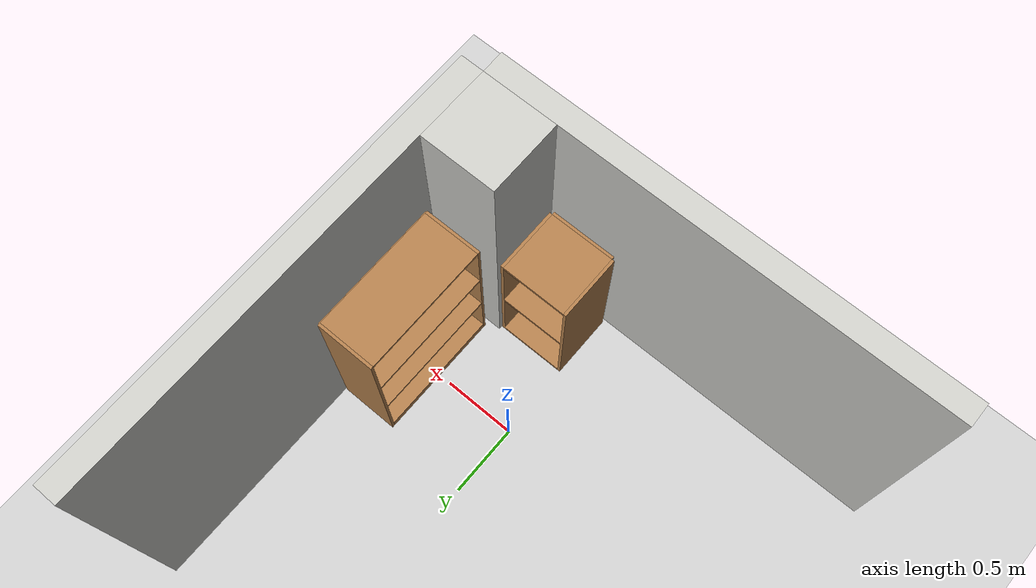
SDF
<sdf version="1.7">
 <world name="default">
  <light name="sun" type="directional">
   <pose>0 0 10 0 -0 0</pose>
   <diffuse>0.8 0.8 0.8 1</diffuse>
   <specular>0.2 0.2 0.2 1</specular>
   <attenuation>
    <range>1000</range>
    <constant>0.9</constant>
    <linear>0.01</linear>
    <quadratic>0.001</quadratic>
   </attenuation>
   <direction>-0.5 0.1 -0.9</direction>
   <spot><inner_angle>0</inner_angle><outer_angle>0</outer_angle><falloff>0</falloff></spot>
  </light>
  <model name="ground_plane">
   <static>1</static>
   <link name="link">
    <collision name="collision">
     <geometry><plane><normal>0 0 1</normal><size>100 100</size></plane></geometry>
     <surface><friction><ode><mu>100</mu><mu2>50</mu2></ode></friction></surface>
    </collision>
    <visual name="visual">
     <cast_shadows>0</cast_shadows>
     <geometry><plane><normal>0 0 1</normal><size>100 100</size></plane></geometry>
     <material>
      <script><uri>file://media/materials/scripts/gazebo.material</uri><name>Gazebo/Grey</name></script>
     </material>
    </visual>
   </link>
  </model>
  <gravity>0 0 -9.8</gravity>
  <magnetic_field>6e-06 2.3e-05 -4.2e-05</magnetic_field>
  <atmosphere type="adiabatic"/>
  <physics type="ode">
   <max_step_size>0.001</max_step_size>
   <real_time_factor>1</real_time_factor>
   <real_time_update_rate>1000</real_time_update_rate>
  </physics>
  <scene><ambient>0.4 0.4 0.4 1</ambient><background>0.7 0.7 0.7 1</background><shadows>1</shadows></scene>
  <spherical_coordinates>
   <surface_model>EARTH_WGS84</surface_model>
   <latitude_deg>0</latitude_deg>
   <longitude_deg>0</longitude_deg>
   <elevation>0</elevation>
   <heading_deg>0</heading_deg>
  </spherical_coordinates>
  <model name="bookshelf">
   <static>1</static>
   <link name="link">
    <inertial><mass>1</mass></inertial>
    <collision name="back">
     <pose>0 0.005 0.6 0 -0 0</pose>
     <geometry><box><size>0.9 0.01 1.2</size></box></geometry>
    </collision>
    <visual name="visual1">
     <pose>0 0.005 0.6 0 -0 0</pose>
     <geometry><box><size>0.9 0.01 1.2</size></box></geometry>
     <material>
      <script><uri>file://media/materials/scripts/gazebo.material</uri><name>Gazebo/Wood</name></script>
     </material>
    </visual>
    <collision name="left_side">
     <pose>0.45 -0.195 0.6 0 -0 0</pose>
     <geometry><box><size>0.02 0.4 1.2</size></box></geometry>
    </collision>
    <visual name="visual2">
     <pose>0.45 -0.195 0.6 0 -0 0</pose>
     <geometry><box><size>0.02 0.4 1.2</size></box></geometry>
     <material>
      <script><uri>file://media/materials/scripts/gazebo.material</uri><name>Gazebo/Wood</name></script>
     </material>
    </visual>
    <collision name="right_side">
     <pose>-0.45 -0.195 0.6 0 -0 0</pose>
     <geometry><box><size>0.02 0.4 1.2</size></box></geometry>
    </collision>
    <visual name="visual3">
     <pose>-0.45 -0.195 0.6 0 -0 0</pose>
     <geometry><box><size>0.02 0.4 1.2</size></box></geometry>
     <material>
      <script><uri>file://media/materials/scripts/gazebo.material</uri><name>Gazebo/Wood</name></script>
     </material>
    </visual>
    <collision name="bottom">
     <pose>0 -0.195 0.03 0 -0 0</pose>
     <geometry><box><size>0.88 0.4 0.06</size></box></geometry>
    </collision>
    <visual name="visual4">
     <pose>0 -0.195 0.03 0 -0 0</pose>
     <geometry><box><size>0.88 0.4 0.06</size></box></geometry>
     <material>
      <script><uri>file://media/materials/scripts/gazebo.material</uri><name>Gazebo/Wood</name></script>
     </material>
    </visual>
    <collision name="top">
     <pose>0 -0.195 1.19 0 -0 0</pose>
     <geometry><box><size>0.88 0.4 0.02</size></box></geometry>
    </collision>
    <visual name="visual5">
     <pose>0 -0.195 1.19 0 -0 0</pose>
     <geometry><box><size>0.88 0.4 0.02</size></box></geometry>
     <material>
      <script><uri>file://media/materials/scripts/gazebo.material</uri><name>Gazebo/Wood</name></script>
     </material>
    </visual>
    <collision name="low_shelf">
     <pose>0 -0.195 0.43 0 -0 0</pose>
     <geometry><box><size>0.88 0.4 0.02</size></box></geometry>
    </collision>
    <visual name="visual6">
     <pose>0 -0.195 0.43 0 -0 0</pose>
     <geometry><box><size>0.88 0.4 0.02</size></box></geometry>
     <material>
      <script><uri>file://media/materials/scripts/gazebo.material</uri><name>Gazebo/Wood</name></script>
     </material>
    </visual>
    <collision name="high_shelf">
     <pose>0 -0.195 0.8 0 -0 0</pose>
     <geometry><box><size>0.88 0.4 0.02</size></box></geometry>
    </collision>
    <visual name="visual7">
     <pose>0 -0.195 0.8 0 -0 0</pose>
     <geometry><box><size>0.88 0.4 0.02</size></box></geometry>
     <material>
      <script><uri>file://media/materials/scripts/gazebo.material</uri><name>Gazebo/Wood</name></script>
     </material>
    </visual>
   </link>
   <pose>0.985 0 0 0 0 -1.5708</pose>
  </model>
  <model name="pick_tray">
   <link name="link">
    <pose>0 0 0.011674 0 -0 0</pose>
    <inertial>
     <mass>0.763484</mass>
     <inertia>
      <ixx>0.00137101</ixx>
      <ixy>0</ixy>
      <ixz>0</ixz>
      <iyy>0.00354935</iyy>
      <iyz>0</iyz>
      <izz>0.00485098</izz>
     </inertia>
    </inertial>
    <visual name="visual">
     <geometry><box><size>0.235035 0.144926 0.023348</size></box></geometry>
     <material>
      <script><name>Gazebo/Blue</name><uri>file://media/materials/scripts/gazebo.material</uri></script>
      <shader type="pixel"/>
     </material>
    </visual>
    <collision name="collision">
     <geometry><box><size>0.235035 0.144926 0.023348</size></box></geometry>
     <surface>
      <friction>
       <ode><mu>0.6</mu><mu2>0.6</mu2><fdir1>0 0 0</fdir1><slip1>0</slip1><slip2>0</slip2></ode>
       <torsional>
        <coefficient>1</coefficient>
        <patch_radius>0</patch_radius>
        <surface_radius>0</surface_radius>
        <use_patch_radius>1</use_patch_radius>
        <ode><slip>0</slip></ode>
       </torsional>
      </friction>
      <bounce><restitution_coefficient>0</restitution_coefficient><threshold>1e+06</threshold></bounce>
      <contact>
       <collide_without_contact>0</collide_without_contact>
       <collide_without_contact_bitmask>1</collide_without_contact_bitmask>
       <collide_bitmask>1</collide_bitmask>
       <ode>
        <soft_cfm>0</soft_cfm>
        <soft_erp>0.2</soft_erp>
        <kp>1e+13</kp>
        <kd>1</kd>
        <max_vel>0.01</max_vel>
        <min_depth>0</min_depth>
       </ode>
       <bullet>
        <split_impulse>1</split_impulse>
        <split_impulse_penetration_threshold>-0.01</split_impulse_penetration_threshold>
        <soft_cfm>0</soft_cfm>
        <soft_erp>0.2</soft_erp>
        <kp>1e+13</kp>
        <kd>1</kd>
       </bullet>
      </contact>
     </surface>
    </collision>
   </link>
   <static>0</static>
   <pose>0.832746 -0.020856 0.512463 1.5708 -0 -0.683001</pose>
  </model>
  <model name="place_tray">
   <link name="link">
    <pose>0 0 0.011674 0 -0 0</pose>
    <inertial>
     <mass>0.763484</mass>
     <inertia>
      <ixx>0.00137101</ixx>
      <ixy>0</ixy>
      <ixz>0</ixz>
      <iyy>0.00354935</iyy>
      <iyz>0</iyz>
      <izz>0.00485098</izz>
     </inertia>
    </inertial>
    <visual name="visual">
     <geometry><box><size>0.235035 0.144926 0.023348</size></box></geometry>
     <material>
      <script><name>Gazebo/Red</name><uri>file://media/materials/scripts/gazebo.material</uri></script>
      <shader type="pixel"/>
     </material>
    </visual>
    <collision name="collision">
     <geometry><box><size>0.235035 0.144926 0.023348</size></box></geometry>
     <surface>
      <friction>
       <ode><mu>0.6</mu><mu2>0.6</mu2><fdir1>0 0 0</fdir1><slip1>0</slip1><slip2>0</slip2></ode>
       <torsional>
        <coefficient>1</coefficient>
        <patch_radius>0</patch_radius>
        <surface_radius>0</surface_radius>
        <use_patch_radius>1</use_patch_radius>
        <ode><slip>0</slip></ode>
       </torsional>
      </friction>
      <bounce><restitution_coefficient>0</restitution_coefficient><threshold>1e+06</threshold></bounce>
      <contact>
       <collide_without_contact>0</collide_without_contact>
       <collide_without_contact_bitmask>1</collide_without_contact_bitmask>
       <collide_bitmask>1</collide_bitmask>
       <ode>
        <soft_cfm>0</soft_cfm>
        <soft_erp>0.2</soft_erp>
        <kp>1e+13</kp>
        <kd>1</kd>
        <max_vel>0.01</max_vel>
        <min_depth>0</min_depth>
       </ode>
       <bullet>
        <split_impulse>1</split_impulse>
        <split_impulse_penetration_threshold>-0.01</split_impulse_penetration_threshold>
        <soft_cfm>0</soft_cfm>
        <soft_erp>0.2</soft_erp>
        <kp>1e+13</kp>
        <kd>1</kd>
       </bullet>
      </contact>
     </surface>
    </collision>
   </link>
   <static>0</static>
   <pose>0.870628 0.139203 0.557517 1.58002 -1.57079 -1.88012</pose>
  </model>
  <model name="cabinet">
   <static>1</static>
   <link name="cabinet_bottom_plate">
    <inertial>
     <pose>0 0 -1 0 -0 0</pose>
     <inertia><ixx>2.05</ixx><ixy>0</ixy><ixz>0</ixz><iyy>2.05</iyy><iyz>0</iyz><izz>2.05</izz></inertia>
     <mass>25</mass>
    </inertial>
    <collision name="cabinet_bottom_plate_geom">
     <pose>0 0 0.01 0 -0 0</pose>
     <geometry><box><size>0.45 0.45 0.02</size></box></geometry>
    </collision>
    <visual name="cabinet_bottom_plate_geom_visual">
     <pose>0 0 0.01 0 -0 0</pose>
     <geometry><box><size>0.45 0.45 0.02</size></box></geometry>
     <material>
      <script><uri>file://media/materials/scripts/gazebo.material</uri><name>Gazebo/Wood</name></script>
     </material>
    </visual>
    <collision name="cabinet_bottom_plate_geom_cabinet_back_plate">
     <pose>0.235 0 0.51 0 -0 0</pose>
     <geometry><box><size>0.02 0.45 1.02</size></box></geometry>
    </collision>
    <visual name="cabinet_bottom_plate_geom_cabinet_back_plate_visual">
     <pose>0.235 0 0.51 0 -0 0</pose>
     <geometry><box><size>0.02 0.45 1.02</size></box></geometry>
     <material>
      <script><uri>file://media/materials/scripts/gazebo.material</uri><name>Gazebo/Wood</name></script>
     </material>
    </visual>
    <collision name="cabinet_bottom_plate_geom_cabinet_left_plate">
     <pose>0 0.235 0.51 0 -0 0</pose>
     <geometry><box><size>0.45 0.02 1.02</size></box></geometry>
    </collision>
    <visual name="cabinet_bottom_plate_geom_cabinet_left_plate_visual">
     <pose>0 0.235 0.51 0 -0 0</pose>
     <geometry><box><size>0.45 0.02 1.02</size></box></geometry>
     <material>
      <script><uri>file://media/materials/scripts/gazebo.material</uri><name>Gazebo/Wood</name></script>
     </material>
    </visual>
    <collision name="cabinet_bottom_plate_geom_cabinet_middle_plate">
     <pose>0 0 0.51 0 -0 0</pose>
     <geometry><box><size>0.45 0.45 0.02</size></box></geometry>
    </collision>
    <visual name="cabinet_bottom_plate_geom_cabinet_middle_plate_visual">
     <pose>0 0 0.51 0 -0 0</pose>
     <geometry><box><size>0.45 0.45 0.02</size></box></geometry>
     <material>
      <script><uri>file://media/materials/scripts/gazebo.material</uri><name>Gazebo/Wood</name></script>
     </material>
    </visual>
    <collision name="cabinet_bottom_plate_geom_cabinet_right_plate">
     <pose>0 -0.235 0.51 0 -0 0</pose>
     <geometry><box><size>0.45 0.02 1.02</size></box></geometry>
    </collision>
    <visual name="cabinet_bottom_plate_geom_cabinet_right_plate_visual">
     <pose>0 -0.235 0.51 0 -0 0</pose>
     <geometry><box><size>0.45 0.02 1.02</size></box></geometry>
     <material>
      <script><uri>file://media/materials/scripts/gazebo.material</uri><name>Gazebo/Wood</name></script>
     </material>
    </visual>
    <collision name="cabinet_bottom_plate_geom_cabinet_top_plate">
     <pose>0 0 1.01 0 -0 0</pose>
     <geometry><box><size>0.45 0.45 0.02</size></box></geometry>
    </collision>
    <visual name="cabinet_bottom_plate_geom_cabinet_top_plate_visual">
     <pose>0 0 1.01 0 -0 0</pose>
     <geometry><box><size>0.45 0.45 0.02</size></box></geometry>
     <material>
      <script><uri>file://media/materials/scripts/gazebo.material</uri><name>Gazebo/Wood</name></script>
     </material>
    </visual>
   </link>
   <pose>0.25 -0.75 0 0 0 -1.5708</pose>
  </model>
  <model name="Untitled">
   <link name="Pillar_1">
    <collision name="Pillar_1_Collision">
     <geometry><box><size>0.5 0.5 2</size></box></geometry>
     <pose>0 0 1 0 -0 0</pose>
    </collision>
    <visual name="Pillar_1_Visual">
     <pose>0 0 1 0 -0 0</pose>
     <geometry><box><size>0.5 0.5 2</size></box></geometry>
     <material>
      <script><uri>file://media/materials/scripts/gazebo.material</uri><name>Gazebo/CeilingTiled</name></script>
      <ambient>1 1 1 1</ambient>
     </material>
     <meta><layer>0</layer></meta>
    </visual>
    <pose>0.75 -0.75 0 0 0 0</pose>
   </link>
   <link name="Wall_1">
    <collision name="Wall_1_Collision">
     <geometry><box><size>3 0.15 2</size></box></geometry>
     <pose>0 0 1 0 -0 0</pose>
    </collision>
    <visual name="Wall_1_Visual">
     <pose>0 0 1 0 -0 0</pose>
     <geometry><box><size>3 0.15 2</size></box></geometry>
     <material>
      <script><uri>file://media/materials/scripts/gazebo.material</uri><name>Gazebo/CeilingTiled</name></script>
      <ambient>1 1 1 1</ambient>
     </material>
     <meta><layer>0</layer></meta>
    </visual>
    <pose>-0.5 -1.075 0 0 0 0</pose>
   </link>
   <link name="Wall_2">
    <collision name="Wall_2_Collision">
     <geometry><box><size>3 0.15 2</size></box></geometry>
     <pose>0 0 1 0 0 0</pose>
    </collision>
    <visual name="Wall_2_Visual">
     <pose>0 0 1 0 0 0</pose>
     <geometry><box><size>3 0.15 2</size></box></geometry>
     <material>
      <script><uri>file://media/materials/scripts/gazebo.material</uri><name>Gazebo/CeilingTiled</name></script>
      <ambient>1 1 1 1</ambient>
     </material>
     <meta><layer>0</layer></meta>
    </visual>
    <pose>1.075 0.5 0 0 -0 1.5708</pose>
   </link>
   <static>1</static>
  </model>
 </world>
</sdf>
